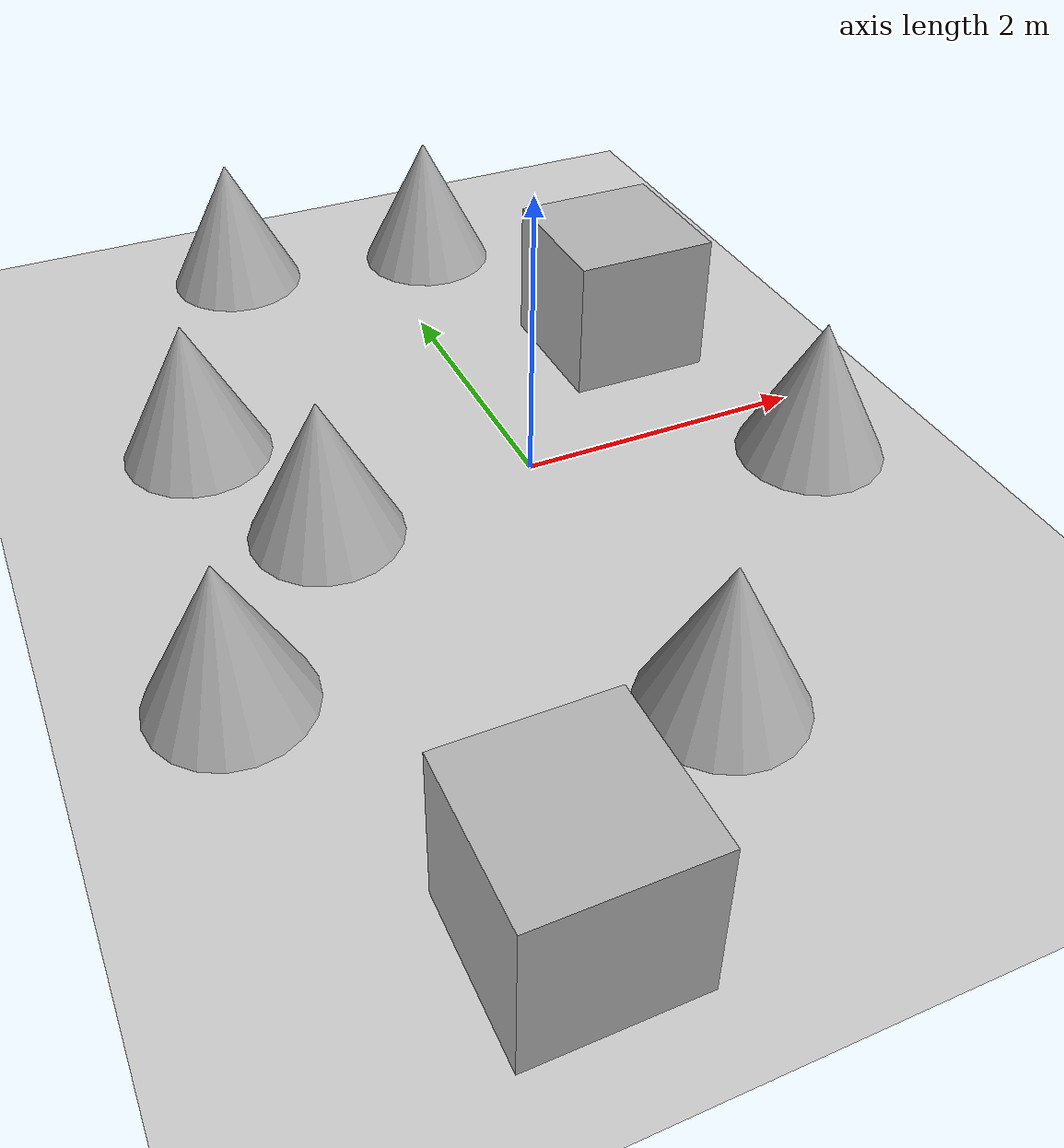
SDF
<?xml version="1.0" ?>
<sdf version='1.10'>
  <world name='empty'>
    <physics name='1ms' type='ignored'>
      <max_step_size>0.001</max_step_size>
      <real_time_factor>1</real_time_factor>
      <real_time_update_rate>1000</real_time_update_rate>
    </physics>
    <plugin name='gz::sim::systems::Physics' filename='gz-sim-physics-system'/>
    <plugin name='gz::sim::systems::UserCommands' filename='gz-sim-user-commands-system'/>
    <plugin name='gz::sim::systems::SceneBroadcaster' filename='gz-sim-scene-broadcaster-system'/>
    <plugin name='gz::sim::systems::Contact' filename='gz-sim-contact-system'/>
    <plugin filename="gz-sim-sensors-system" name="gz::sim::systems::Sensors">
      <render_engine>ogre2</render_engine>
    </plugin>
    <gravity>0 0 -9.8000000000000007</gravity>
    <magnetic_field>5.5644999999999998e-06 2.2875799999999999e-05 -4.2388400000000002e-05</magnetic_field>
    <atmosphere type='adiabatic'/>
    <scene>
      <ambient>0.400000006 0.400000006 0.400000006 1</ambient>
      <background>0.699999988 0.699999988 0.699999988 1</background>
      <shadows>true</shadows>
    </scene>
    <model name='ground_plane'>
      <static>true</static>
      <link name='link'>
        <collision name='collision'>
          <geometry>
            <plane>
              <normal>0 0 1</normal>
              <size>100 100</size>
            </plane>
          </geometry>
          <surface>
            <friction>
              <ode/>
            </friction>
            <bounce/>
            <contact/>
          </surface>
        </collision>
        <visual name='visual'>
          <geometry>
            <plane>
              <normal>0 0 1</normal>
              <size>100 100</size>
            </plane>
          </geometry>
          <material>
            <ambient>0.800000012 0.800000012 0.800000012 1</ambient>
            <diffuse>0.800000012 0.800000012 0.800000012 1</diffuse>
            <specular>0.800000012 0.800000012 0.800000012 1</specular>
          </material>
        </visual>
        <pose>0 0 0 0 0 0</pose>
        <inertial>
          <pose>0 0 0 0 0 0</pose>
          <mass>1</mass>
          <inertia>
            <ixx>1</ixx>
            <ixy>0</ixy>
            <ixz>0</ixz>
            <iyy>1</iyy>
            <iyz>0</iyz>
            <izz>1</izz>
          </inertia>
        </inertial>
        <enable_wind>false</enable_wind>
      </link>
      <pose>0 0 0 0 0 0</pose>
      <self_collide>false</self_collide>
    </model>
    <model name='box'>
      <pose>1.1905394817908199 1.1541501463180761 0.5 0 0 0</pose>
      <link name='box_link'>
        <inertial>
          <inertia>
            <ixx>0.16666</ixx>
            <ixy>0</ixy>
            <ixz>0</ixz>
            <iyy>0.16666</iyy>
            <iyz>0</iyz>
            <izz>0.16666</izz>
          </inertia>
          <mass>1</mass>
          <pose>0 0 0 0 0 0</pose>
        </inertial>
        <collision name='box_collision'>
          <geometry>
            <box>
              <size>1 1 1</size>
            </box>
          </geometry>
          <surface>
            <friction>
              <ode/>
            </friction>
            <bounce/>
            <contact/>
          </surface>
        </collision>
        <visual name='box_visual'>
          <geometry>
            <box>
              <size>1 1 1</size>
            </box>
          </geometry>
          <material>
            <ambient>0.300000012 0.300000012 0.300000012 1</ambient>
            <diffuse>0.699999988 0.699999988 0.699999988 1</diffuse>
            <specular>1 1 1 1</specular>
          </material>
        </visual>
        <pose>0 0 0 0 0 0</pose>
        <enable_wind>false</enable_wind>
      </link>
      <static>false</static>
      <self_collide>false</self_collide>
    </model>
    <model name='cone'>
      <pose>-1.4575815163650621 -0.10191551690645989 0.5 0 0 0</pose>
      <link name='cone_link'>
        <inertial>
          <inertia>
            <ixx>0.074999999999999997</ixx>
            <ixy>0</ixy>
            <ixz>0</ixz>
            <iyy>0.074999999999999997</iyy>
            <iyz>0</iyz>
            <izz>0.074999999999999997</izz>
          </inertia>
          <mass>1</mass>
          <pose>0 0 0 0 0 0</pose>
        </inertial>
        <collision name='cone_collision'>
          <geometry>
            <cone>
              <radius>0.5</radius>
              <length>1</length>
            </cone>
          </geometry>
          <surface>
            <friction>
              <ode/>
            </friction>
            <bounce/>
            <contact/>
          </surface>
        </collision>
        <visual name='cone_visual'>
          <geometry>
            <cone>
              <radius>0.5</radius>
              <length>1</length>
            </cone>
          </geometry>
          <material>
            <ambient>0.300000012 0.300000012 0.300000012 1</ambient>
            <diffuse>0.699999988 0.699999988 0.699999988 1</diffuse>
            <specular>1 1 1 1</specular>
          </material>
        </visual>
        <pose>0 0 0 0 0 0</pose>
        <enable_wind>false</enable_wind>
      </link>
      <static>false</static>
      <self_collide>false</self_collide>
    </model>
    <model name='cone_0'>
      <pose>0.065998821354525283 -2.3555347542562863 0.5 0 0 0</pose>
      <link name='cone_link'>
        <inertial>
          <inertia>
            <ixx>0.074999999999999997</ixx>
            <ixy>0</ixy>
            <ixz>0</ixz>
            <iyy>0.074999999999999997</iyy>
            <iyz>0</iyz>
            <izz>0.074999999999999997</izz>
          </inertia>
          <mass>1</mass>
          <pose>0 0 0 0 0 0</pose>
        </inertial>
        <collision name='cone_collision'>
          <geometry>
            <cone>
              <radius>0.5</radius>
              <length>1</length>
            </cone>
          </geometry>
          <surface>
            <friction>
              <ode/>
            </friction>
            <bounce/>
            <contact/>
          </surface>
        </collision>
        <visual name='cone_visual'>
          <geometry>
            <cone>
              <radius>0.5</radius>
              <length>1</length>
            </cone>
          </geometry>
          <material>
            <ambient>0.300000012 0.300000012 0.300000012 1</ambient>
            <diffuse>0.699999988 0.699999988 0.699999988 1</diffuse>
            <specular>1 1 1 1</specular>
          </material>
        </visual>
        <pose>0 0 0 0 0 0</pose>
        <enable_wind>false</enable_wind>
      </link>
      <static>false</static>
      <self_collide>false</self_collide>
    </model>
    <model name='cone_1'>
      <pose>-1.988433848349743 1.0598083736711652 0.5 0 0 0</pose>
      <link name='cone_link'>
        <inertial>
          <inertia>
            <ixx>0.074999999999999997</ixx>
            <ixy>0</ixy>
            <ixz>0</ixz>
            <iyy>0.074999999999999997</iyy>
            <iyz>0</iyz>
            <izz>0.074999999999999997</izz>
          </inertia>
          <mass>1</mass>
          <pose>0 0 0 0 0 0</pose>
        </inertial>
        <collision name='cone_collision'>
          <geometry>
            <cone>
              <radius>0.5</radius>
              <length>1</length>
            </cone>
          </geometry>
          <surface>
            <friction>
              <ode/>
            </friction>
            <bounce/>
            <contact/>
          </surface>
        </collision>
        <visual name='cone_visual'>
          <geometry>
            <cone>
              <radius>0.5</radius>
              <length>1</length>
            </cone>
          </geometry>
          <material>
            <ambient>0.300000012 0.300000012 0.300000012 1</ambient>
            <diffuse>0.699999988 0.699999988 0.699999988 1</diffuse>
            <specular>1 1 1 1</specular>
          </material>
        </visual>
        <pose>0 0 0 0 0 0</pose>
        <enable_wind>false</enable_wind>
      </link>
      <static>false</static>
      <self_collide>false</self_collide>
    </model>
    <model name='cone_2'>
      <pose>0.42869691785965713 2.9754562852627209 0.5 0 0 0</pose>
      <link name='cone_link'>
        <inertial>
          <inertia>
            <ixx>0.074999999999999997</ixx>
            <ixy>0</ixy>
            <ixz>0</ixz>
            <iyy>0.074999999999999997</iyy>
            <iyz>0</iyz>
            <izz>0.074999999999999997</izz>
          </inertia>
          <mass>1</mass>
          <pose>0 0 0 0 0 0</pose>
        </inertial>
        <collision name='cone_collision'>
          <geometry>
            <cone>
              <radius>0.5</radius>
              <length>1</length>
            </cone>
          </geometry>
          <surface>
            <friction>
              <ode/>
            </friction>
            <bounce/>
            <contact/>
          </surface>
        </collision>
        <visual name='cone_visual'>
          <geometry>
            <cone>
              <radius>0.5</radius>
              <length>1</length>
            </cone>
          </geometry>
          <material>
            <ambient>0.300000012 0.300000012 0.300000012 1</ambient>
            <diffuse>0.699999988 0.699999988 0.699999988 1</diffuse>
            <specular>1 1 1 1</specular>
          </material>
        </visual>
        <pose>0 0 0 0 0 0</pose>
        <enable_wind>false</enable_wind>
      </link>
      <static>false</static>
      <self_collide>false</self_collide>
    </model>
    <model name='cone_3'>
      <pose>1.8145389357741211 -0.59289105231221029 0.5 0 0 0</pose>
      <link name='cone_link'>
        <inertial>
          <inertia>
            <ixx>0.074999999999999997</ixx>
            <ixy>0</ixy>
            <ixz>0</ixz>
            <iyy>0.074999999999999997</iyy>
            <iyz>0</iyz>
            <izz>0.074999999999999997</izz>
          </inertia>
          <mass>1</mass>
          <pose>0 0 0 0 0 0</pose>
        </inertial>
        <collision name='cone_collision'>
          <geometry>
            <cone>
              <radius>0.5</radius>
              <length>1</length>
            </cone>
          </geometry>
          <surface>
            <friction>
              <ode/>
            </friction>
            <bounce/>
            <contact/>
          </surface>
        </collision>
        <visual name='cone_visual'>
          <geometry>
            <cone>
              <radius>0.5</radius>
              <length>1</length>
            </cone>
          </geometry>
          <material>
            <ambient>0.300000012 0.300000012 0.300000012 1</ambient>
            <diffuse>0.699999988 0.699999988 0.699999988 1</diffuse>
            <specular>1 1 1 1</specular>
          </material>
        </visual>
        <pose>0 0 0 0 0 0</pose>
        <enable_wind>false</enable_wind>
      </link>
      <static>false</static>
      <self_collide>false</self_collide>
    </model>
    <model name='cone_4'>
      <pose>-1.1177449358700153 3.2212207488297149 0.5 0 0 0</pose>
      <link name='cone_link'>
        <inertial>
          <inertia>
            <ixx>0.074999999999999997</ixx>
            <ixy>0</ixy>
            <ixz>0</ixz>
            <iyy>0.074999999999999997</iyy>
            <iyz>0</iyz>
            <izz>0.074999999999999997</izz>
          </inertia>
          <mass>1</mass>
          <pose>0 0 0 0 0 0</pose>
        </inertial>
        <collision name='cone_collision'>
          <geometry>
            <cone>
              <radius>0.5</radius>
              <length>1</length>
            </cone>
          </geometry>
          <surface>
            <friction>
              <ode/>
            </friction>
            <bounce/>
            <contact/>
          </surface>
        </collision>
        <visual name='cone_visual'>
          <geometry>
            <cone>
              <radius>0.5</radius>
              <length>1</length>
            </cone>
          </geometry>
          <material>
            <ambient>0.300000012 0.300000012 0.300000012 1</ambient>
            <diffuse>0.699999988 0.699999988 0.699999988 1</diffuse>
            <specular>1 1 1 1</specular>
          </material>
        </visual>
        <pose>0 0 0 0 0 0</pose>
        <enable_wind>false</enable_wind>
      </link>
      <static>false</static>
      <self_collide>false</self_collide>
    </model>
    <model name='cone_5'>
      <pose>-2.3895528427772001 -1.2562259141161087 0.5 0 0 0</pose>
      <link name='cone_link'>
        <inertial>
          <inertia>
            <ixx>0.074999999999999997</ixx>
            <ixy>0</ixy>
            <ixz>0</ixz>
            <iyy>0.074999999999999997</iyy>
            <iyz>0</iyz>
            <izz>0.074999999999999997</izz>
          </inertia>
          <mass>1</mass>
          <pose>0 0 0 0 0 0</pose>
        </inertial>
        <collision name='cone_collision'>
          <geometry>
            <cone>
              <radius>0.5</radius>
              <length>1</length>
            </cone>
          </geometry>
          <surface>
            <friction>
              <ode/>
            </friction>
            <bounce/>
            <contact/>
          </surface>
        </collision>
        <visual name='cone_visual'>
          <geometry>
            <cone>
              <radius>0.5</radius>
              <length>1</length>
            </cone>
          </geometry>
          <material>
            <ambient>0.300000012 0.300000012 0.300000012 1</ambient>
            <diffuse>0.699999988 0.699999988 0.699999988 1</diffuse>
            <specular>1 1 1 1</specular>
          </material>
        </visual>
        <pose>0 0 0 0 0 0</pose>
        <enable_wind>false</enable_wind>
      </link>
      <static>false</static>
      <self_collide>false</self_collide>
    </model>
    <model name='box_0'>
      <pose>-1.3471878819786767 -3.3341872455004675 0.5 0 0 0</pose>
      <link name='box_link'>
        <inertial>
          <inertia>
            <ixx>0.16666</ixx>
            <ixy>0</ixy>
            <ixz>0</ixz>
            <iyy>0.16666</iyy>
            <iyz>0</iyz>
            <izz>0.16666</izz>
          </inertia>
          <mass>1</mass>
          <pose>0 0 0 0 0 0</pose>
        </inertial>
        <collision name='box_collision'>
          <geometry>
            <box>
              <size>1 1 1</size>
            </box>
          </geometry>
          <surface>
            <friction>
              <ode/>
            </friction>
            <bounce/>
            <contact/>
          </surface>
        </collision>
        <visual name='box_visual'>
          <geometry>
            <box>
              <size>1 1 1</size>
            </box>
          </geometry>
          <material>
            <ambient>0.300000012 0.300000012 0.300000012 1</ambient>
            <diffuse>0.699999988 0.699999988 0.699999988 1</diffuse>
            <specular>1 1 1 1</specular>
          </material>
        </visual>
        <pose>0 0 0 0 0 0</pose>
        <enable_wind>false</enable_wind>
      </link>
      <static>false</static>
      <self_collide>false</self_collide>
    </model>
    <light name='sun' type='directional'>
      <pose>0 0 10 0 0 0</pose>
      <cast_shadows>true</cast_shadows>
      <intensity>1</intensity>
      <direction>-0.5 0.10000000000000001 -0.90000000000000002</direction>
      <diffuse>0.800000012 0.800000012 0.800000012 1</diffuse>
      <specular>0.200000003 0.200000003 0.200000003 1</specular>
      <attenuation>
        <range>1000</range>
        <linear>0.01</linear>
        <constant>0.90000000000000002</constant>
        <quadratic>0.001</quadratic>
      </attenuation>
      <spot>
        <inner_angle>0</inner_angle>
        <outer_angle>0</outer_angle>
        <falloff>0</falloff>
      </spot>
    </light>
  </world>
</sdf>
